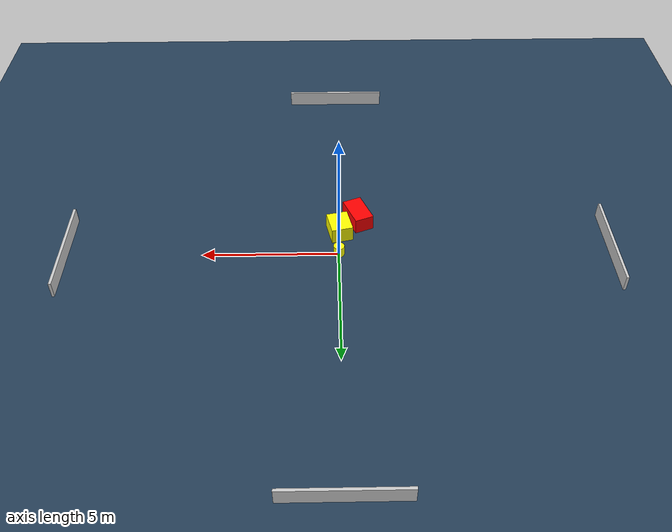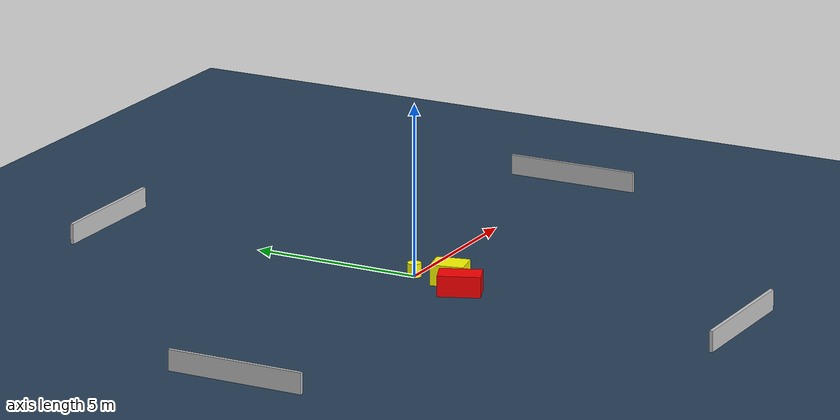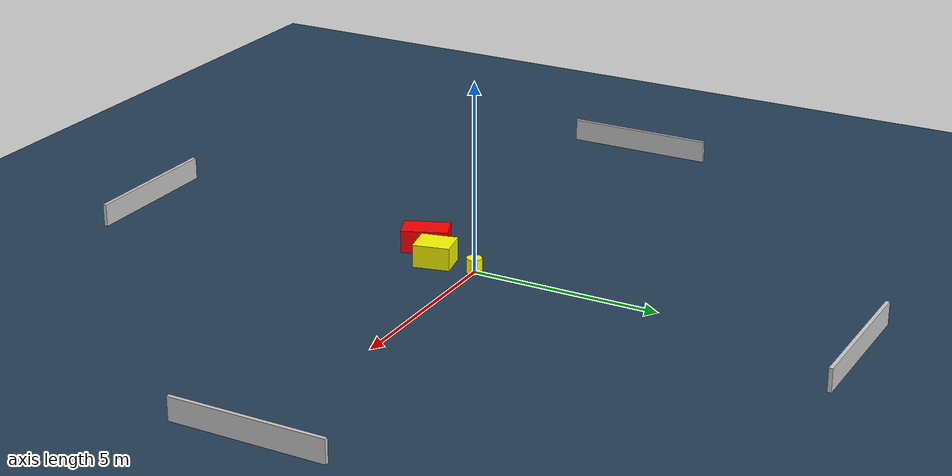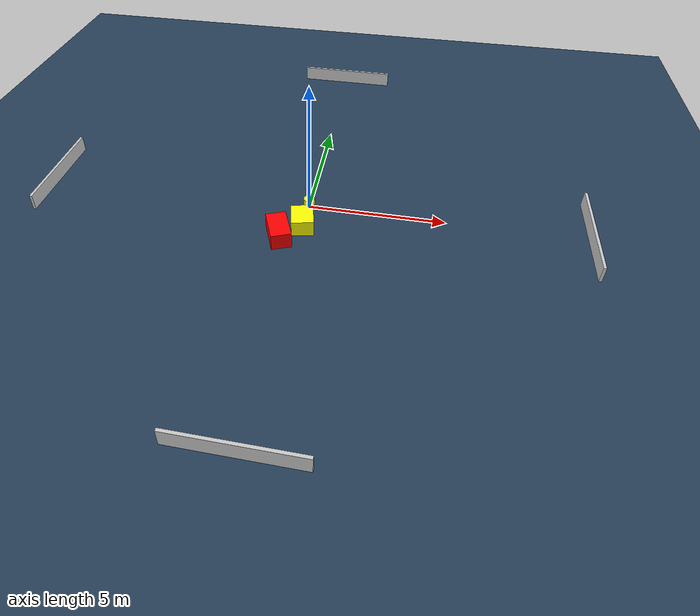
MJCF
<?xml version="1.0" ?>
<mujoco model="generated_environment">
  <option timestep="0.01" integrator="RK4" cone="elliptic"/>
  <default>
    <geom density="1"/>
  </default>
  <asset>
    <texture builtin="gradient" height="3072" name="skybox" rgb1="0.3 0.5 0.7" rgb2="0 0 0" type="skybox" width="512"/>
    <texture builtin="checker" height="300" name="groundplane" rgb1="0.2 0.3 0.4" rgb2="0.1 0.2 0.3" type="2d" width="300"/>
    <material name="groundplane" reflectance="0.2" texrepeat="5 5" texture="groundplane"/>
  </asset>
  <worldbody>
    <light dir="0 0 -1" directional="true" pos="0 0 1.5"/>
    <geom condim="3" friction="0.5 0.005 0.001" material="groundplane" name="floor" pos="0 0 0" size="0 0 0.05" type="plane"/>
    <body name="walls">
      <geom name="wall_1" condim="4" pos="-10.0 0.0 0.3" rgba="0.800000011920929 0.800000011920929 0.800000011920929 1.0" size="0.05 2.0 0.3" type="box"/>
      <geom name="wall_2" condim="4" pos="10.0 0.0 0.3" rgba="0.800000011920929 0.800000011920929 0.800000011920929 1.0" size="0.05 2.0 0.3" type="box"/>
      <geom name="wall_3" condim="4" pos="0.0 -10.0 0.3" rgba="0.800000011920929 0.800000011920929 0.800000011920929 1.0" size="2.0 0.05 0.3" type="box"/>
      <geom name="wall_4" condim="4" pos="0.0 10.0 0.3" rgba="0.800000011920929 0.800000011920929 0.800000011920929 1.0" size="2.0 0.05 0.3" type="box"/>
    </body>
    <body name="robot">
      <joint name="joint_x" type="slide" pos="0 0 0" axis="1 0 0"/>
      <joint name="joint_y" type="slide" pos="0 0 0" axis="0 1 0"/>
      <geom name="robot" type="cylinder" pos="0.0 0.0 0.2" size="0.2 0.2 0.0" mass="5.0" friction="1.0 0.005 0.0001" condim="4" rgba="1.0 1.0 0.0 1.0"/>
    </body>
    <body name="obstacle_1_movable">
      <geom name="obstacle_1_movable" condim="4" pos="-0.03872256977715386 -1.1428923119710703 0.3" euler="0 0 192.6341948660708" friction="0.0 0.005 0.001" rgba="1.0 1.0 0.0 1.0" size="0.3996181676763334 0.48199046752093505 0.3" type="box" mass="0.1"/>
      <joint type="free"/>
    </body>
    <body name="obstacle_2_static">
      <geom name="obstacle_2_static" condim="4" pos="-0.7491866781221616 -1.822070437250094 0.3" euler="0 0 112.29587800093881" friction="0.0 0.005 0.001" rgba="1.0 0.0 0.0 1.0" size="0.6098828983691859 0.3610930850922887 0.3" type="box"/>
    </body>
  </worldbody>
  <actuator>
    <motor name="actuator_x" joint="joint_x" gear="1" ctrlrange="-1 1"/>
    <motor name="actuator_y" joint="joint_y" gear="1" ctrlrange="-1 1"/>
  </actuator>
</mujoco>
